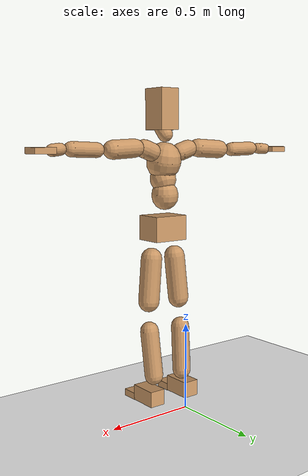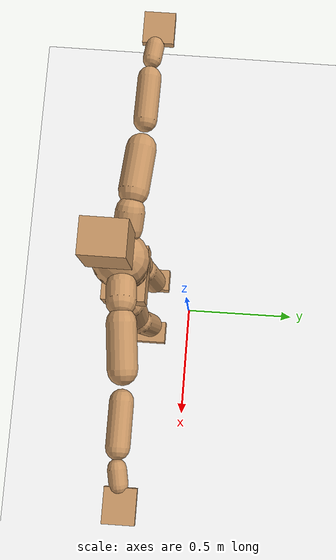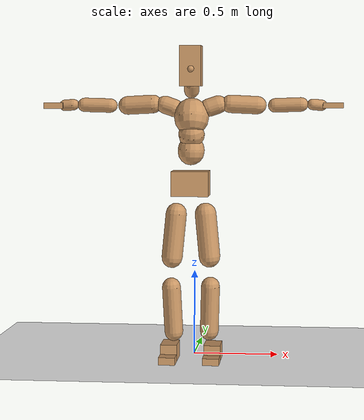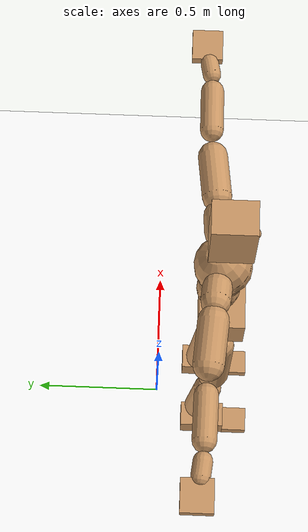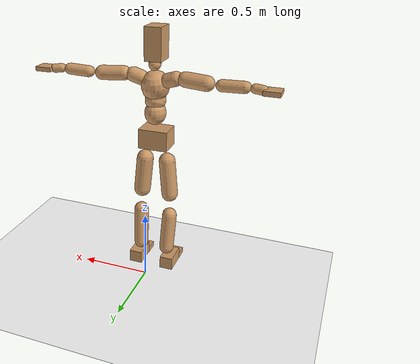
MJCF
<mujoco model="humanoid">
  <option integrator="implicitfast" />

  <visual>
    <global offwidth="1280" offheight="960" />
    <headlight active="1" ambient="0.34 0.34 0.34" diffuse="0.5 0.5 0.5" />
  </visual>

  <default>
    <joint damping="2" stiffness="2" armature="0.01" limited="true" solimplimit="0 .99 .01" />
    <geom condim="1" friction="0.7 0.005 0.0001" solimp=".99 .99 .003" solref="0.015 1" margin="0.001" rgba="0.8 0.6 .4 1" />
    <default class="smplcontact">
      <geom condim="3" friction="1. 0.005 0.0001" solref="0.015 1" solimp="0.98 0.98 0.001" priority="1" />
    </default>
    <default class="stiff_medium">
      <joint stiffness="10" />
    </default>
    <default class="stiff_medium_higher">
      <joint stiffness="50" />
    </default>
    <default class="stiff_high">
      <joint stiffness="100" />
    </default>
  </default>

  <asset>
    <texture type="skybox" builtin="gradient" rgb1="0.99 0.99 0.99" rgb2="0.608 0.828 0.892" width="100" />
    <texture builtin="flat" height="1278" mark="cross" markrgb="1 1 1" name="texgeom" random="0.01" rgb1="0.8 0.6 0.4" rgb2="0.8 0.6 0.4" type="cube" width="127" />
    <texture name="texplane" type="2d" builtin="checker" markrgb="1 1 1" rgb1="0.756 0.772 0.76" rgb2="0.6 0.6 0.6" width="100" height="100" />
    <material name="MatPlane" reflectance="0.5" texture="texplane" texrepeat="1 1" texuniform="true" />
    <material name="geom" texture="texgeom" texuniform="true" />
  </asset>

  <worldbody>
    <light name="tracking_light" pos="0 0 7" dir="0 0 -1" directional="true" cutoff="100" exponent="1" diffuse="1 1 1" specular="0.1 0.1 0.1" mode="trackcom" />
    <camera name="back" pos="0 3 2.4" xyaxes="-1 0 0 0 -1 2" mode="trackcom" />
    <camera name="side" pos="-3 0 2.4" xyaxes="0 -1 0 1 0 2" mode="trackcom" />
    <camera name="front_side" pos="-2.8 -2.8 0.8" xyaxes="0.5 -0.5 0 0.1 0.1 1" mode="trackcom" />
    <geom condim="3" name="floor" pos="0 0 0" rgba="1 1 1 1" size="100 100 .2" type="plane" material="MatPlane" />
    <body name="Pelvis" pos="-0.0018 -0.2233 1.05109" euler="90 0 0">
      <site name="Pelvis" size="0.01" />
      <freejoint name="Pelvis" />
      <geom type="box" pos="-0.0000 -0.0121 -0.0055" size="0.1069 0.0722 0.083" quat="1.0000 0.0000 0.0000 0.0000" density="3165.830099" name="Pelvis" />
      <body name="L_Hip" pos="0.0781875 -0.102825 -0.00765">
        <joint name="L_Hip_x" type="hinge" pos="0 0 0" axis="1 0 0" stiffness="12.187540568181818" range="-160.0 22.92" class="stiff_medium" damping="19.237168096912296" armature="0.013495335550763796"/>
        <joint name="L_Hip_y" type="hinge" pos="0 0 0" axis="0 1 0" stiffness="12.16392" range="-70.0 70.0" class="stiff_medium" damping="12.014228216103271" armature="0.011866378571103066"/>
        <joint name="L_Hip_z" type="hinge" pos="0 0 0" axis="0 0 1" stiffness="12.168955681818181" range="-28.65 90.0" class="stiff_medium" damping="12.816129654657342" armature="0.013497721876857558"/>
        <geom type="capsule" density="2040.816327" fromto="0.0077625 -0.084375 -0.0010125 0.030825 -0.337725 -0.00405" size="0.0615" name="L_Hip" />
        <body name="L_Knee" pos="0.0385875 -0.4221 -0.0050625">
          <joint name="L_Knee_x" type="hinge" pos="0 0 0" axis="1 0 0" range="-5.16 171.89" damping="10.072640561582283" armature="0.013188848617403121" stiffness="2.40397425"/>
          <joint name="L_Knee_y" type="hinge" pos="0 0 0" axis="0 1 0" range="-4.58 6.88" damping="9.492149495972512" armature="0.011596019506642564" stiffness="2.428120431818182"/>
          <joint name="L_Knee_z" type="hinge" pos="0 0 0" axis="0 0 1" range="-6.88 4.58" damping="10.071761708255641" armature="0.013200099383969112" stiffness="2.401506159090909"/>
          <geom type="capsule" density="1234.567901" fromto="-0.0030375 -0.08955 -0.0097875 -0.0122625 -0.3582 -0.039375" size="0.0541" name="L_Knee" />
          <body name="L_Ankle" pos="-0.0153 -0.44775 -0.0491625">
            <joint name="L_Ankle_x" type="hinge" pos="0 0 0" axis="1 0 0" range="-45.84 45.84" class="stiff_medium" damping="6.897532598032319" armature="0.011747130867095364" stiffness="11.250017954545456"/>
            <joint name="L_Ankle_y" type="hinge" pos="0 0 0" axis="0 1 0" range="-74.48 22.92" class="stiff_medium" damping="3.4392113682719305" armature="0.011682135831686716" stiffness="11.250011704545456"/>
            <joint name="L_Ankle_z" type="hinge" pos="0 0 0" axis="0 0 1" range="-4.58 4.58" class="stiff_medium" damping="6.751978545825355" armature="0.011256596119329845" stiffness="11.25"/>
            <geom type="box" pos="0.0262125 -0.0268875 0.027225" size="0.0483 0.0464 0.085" quat="1.0000 0.0000 0.0000 0.0000" density="449.071558" name="L_Ankle" class="smplcontact" />
            <body name="L_Toe" pos="0.0297 -0.062775 0.134213">
              <joint name="L_Toe_x" type="hinge" pos="0 0 0" axis="1 0 0" range="-91.67 22.92" armature="0.011009874139730069" damping="2.2258578936847093" stiffness="2.25"/>
              <joint name="L_Toe_y" type="hinge" pos="0 0 0" axis="0 1 0" range="-4.58 4.58" armature="0.010711537859158219" damping="2.195493574716446" stiffness="2.25"/>
              <joint name="L_Toe_z" type="hinge" pos="0 0 0" axis="0 0 1" range="-4.58 4.58" armature="0.01010831795771753" damping="2.132778254055702" stiffness="2.25"/>
              <geom type="box" pos="-0.003375 0.0061875 0.0279" size="0.0478 0.02 0.0496" quat="1.0000 0.0000 0.0000 0.0000" density="423.206892" name="L_Toe" class="smplcontact" />
            </body>
          </body>
        </body>
      </body>
      <body name="R_Hip" pos="-0.0761625 -0.101813 -0.0048375">
        <joint name="R_Hip_x" type="hinge" pos="0 0 0" axis="1 0 0" stiffness="12.187540568181818" range="-160.0 22.92" class="stiff_medium" damping="19.237168096912296" armature="0.013495335550763796"/>
        <joint name="R_Hip_y" type="hinge" pos="0 0 0" axis="0 1 0" stiffness="12.16392" range="-70.0 70.0" class="stiff_medium" damping="12.014228216103271" armature="0.011866378571103066"/>
        <joint name="R_Hip_z" type="hinge" pos="0 0 0" axis="0 0 1" stiffness="12.168955681818181" range="-90.0 28.65" class="stiff_medium" damping="12.816129654657342" armature="0.013497721876857558"/>
        <geom type="capsule" density="2040.816327" fromto="-0.0086625 -0.0860625 -0.002025 -0.034425 -0.344362 -0.0079875" size="0.0606" name="R_Hip" />
        <body name="R_Knee" pos="-0.0430875 -0.430425 -0.0100125">
          <joint name="R_Knee_x" type="hinge" pos="0 0 0" axis="1 0 0" range="-5.16 171.89" damping="10.072640561582283" armature="0.013188848617403121" stiffness="2.40397425"/>
          <joint name="R_Knee_y" type="hinge" pos="0 0 0" axis="0 1 0" range="-6.88 4.58" damping="9.492149495972512" armature="0.011596019506642564" stiffness="2.428120431818182"/>
          <joint name="R_Knee_z" type="hinge" pos="0 0 0" axis="0 0 1" range="-4.58 6.88" damping="10.071761708255641" armature="0.013200099383969112" stiffness="2.401506159090909"/>
          <geom type="capsule" density="1234.567901" fromto="0.0036 -0.0896625 -0.0095625 0.014175 -0.358537 -0.038025" size="0.0541" name="R_Knee" />
          <body name="R_Ankle" pos="0.017775 -0.4482 -0.0475875">
            <joint name="R_Ankle_x" type="hinge" pos="0 0 0" axis="1 0 0" range="-45.84 45.84" class="stiff_medium" damping="6.897532598032319" armature="0.011747130867095364" stiffness="11.250017954545456"/>
            <joint name="R_Ankle_y" type="hinge" pos="0 0 0" axis="0 1 0" range="-22.92 74.48" class="stiff_medium" damping="3.4392113682719305" armature="0.011682135831686716" stiffness="11.250011704545456"/>
            <joint name="R_Ankle_z" type="hinge" pos="0 0 0" axis="0 0 1" range="-4.58 4.58" class="stiff_medium" damping="6.751978545825355" armature="0.011256596119329845" stiffness="11.25"/>
            <geom type="box" pos="-0.02385 -0.019575 0.0288" size="0.0483 0.0478 0.0865" quat="1.0000 0.0000 0.0000 0.0000" density="434.700981" name="R_Ankle" class="smplcontact" />
            <body name="R_Toe" pos="-0.028575 -0.0541125 0.138713">
              <joint name="R_Toe_x" type="hinge" pos="0 0 0" axis="1 0 0" range="-91.67 22.92" armature="0.011009874139730069" damping="2.2258578936847093" stiffness="2.25"/>
              <joint name="R_Toe_y" type="hinge" pos="0 0 0" axis="0 1 0" range="-4.58 4.58" armature="0.010711537859158219" damping="2.195493574716446" stiffness="2.25"/>
              <joint name="R_Toe_z" type="hinge" pos="0 0 0" axis="0 0 1" range="-4.58 4.58" armature="0.01010831795771753" damping="2.132778254055702" stiffness="2.25"/>
              <geom type="box" pos="0.004725 0.0050625 0.0255375" size="0.0479 0.0216 0.0493" quat="1.0000 0.0000 0.0000 0.0000" density="407.384095" name="R_Toe" class="smplcontact" />
            </body>
          </body>
        </body>
      </body>
      <body name="Torso" pos="-0.0025 0.109 -0.0267">
        <joint name="Torso_x" type="hinge" pos="0 0 0" axis="1 0 0" range="-25.78 57.3" class="stiff_medium" damping="15.0" armature="0.01" stiffness="10.0"/>
        <joint name="Torso_y" type="hinge" pos="0 0 0" axis="0 1 0" range="-57.3 57.3" class="stiff_high" damping="20.0" armature="0.010000000000000002" stiffness="100.0"/>
        <joint name="Torso_z" type="hinge" pos="0 0 0" axis="0 0 1" range="-34.38 34.38" class="stiff_high" damping="19.999999999999996" armature="0.009999999999999998" stiffness="100.0"/>
        <geom type="capsule" density="2040.816327" fromto="0.0025 0.0608 0.0005 0.003 0.0743 0.0006" size="0.0769" name="Torso" />
        <body name="Spine" pos="0.0055 0.1352 0.0011">
          <joint name="Spine_x" type="hinge" pos="0 0 0" axis="1 0 0" stiffness="10.0" range="-25.78 57.3" class="stiff_medium" damping="15.000000000000004" armature="0.010000000000000005"/>
          <joint name="Spine_y" type="hinge" pos="0 0 0" axis="0 1 0" stiffness="10.0" range="-57.3 57.3" class="stiff_high" damping="8.0" armature="0.01"/>
          <joint name="Spine_z" type="hinge" pos="0 0 0" axis="0 0 1" stiffness="20.0" range="-34.38 34.38" class="stiff_high" damping="11.999999999999998" armature="0.009999999999999998"/>
          <geom type="capsule" density="2040.816327" fromto="0.0007 0.0238 0.0114 0.0008 0.0291 0.014" size="0.0755" name="Spine" />
          <body name="Chest" pos="0.0015 0.0529 0.0254">
            <joint name="Chest_x" type="hinge" pos="0 0 0" axis="1 0 0" stiffness="10.0" range="-25.78 57.3" class="stiff_medium" damping="15.0" armature="0.010000000000000002"/>
            <joint name="Chest_y" type="hinge" pos="0 0 0" axis="0 1 0" stiffness="10.0" range="-57.3 57.3" class="stiff_high" damping="8.0" armature="0.010000000000000002"/>
            <joint name="Chest_z" type="hinge" pos="0 0 0" axis="0 0 1" stiffness="20.0" range="-34.38 34.38" class="stiff_high" damping="12.0" armature="0.01"/>
            <geom type="capsule" density="2040.816327" fromto="-0.0009 0.0682 -0.0173 -0.001 0.0833 -0.0212" size="0.1002" name="Chest" />
            <body name="Neck" pos="-0.0028 0.2139 -0.0429">
              <joint name="Neck_x" type="hinge" pos="0 0 0" axis="1 0 0" range="-28.65 57.3" class="stiff_medium_higher" damping="10.0" armature="0.01" stiffness="50.0"/>
              <joint name="Neck_y" type="hinge" pos="0 0 0" axis="0 1 0" range="-40.11 40.11" class="stiff_medium_higher" damping="10.0" armature="0.01" stiffness="50.0"/>
              <joint name="Neck_z" type="hinge" pos="0 0 0" axis="0 0 1" range="-40.11 40.11" class="stiff_medium_higher" damping="9.999999999999998" armature="0.009999999999999998" stiffness="50.0"/>
              <geom type="capsule" density="1000" fromto="0.001 0.013 0.0103 0.0041 0.052 0.0411" size="0.0436" name="Neck" />
              <body name="Head" pos="0.0052 0.065 0.0513">
                <joint name="Head_x" type="hinge" pos="0 0 0" axis="1 0 0" range="-28.65 57.3" class="stiff_medium_higher" damping="2.0000000000000036" armature="0.010000000000000035" stiffness="50.0"/>
                <joint name="Head_y" type="hinge" pos="0 0 0" axis="0 1 0" range="-40.11 40.11" class="stiff_medium_higher" damping="2.0" armature="0.01" stiffness="50.0"/>
                <joint name="Head_z" type="hinge" pos="0 0 0" axis="0 0 1" range="-40.11 40.11" class="stiff_medium_higher" damping="1.999999999999998" armature="0.009999999999999981" stiffness="50.0"/>
                <geom type="box" pos="-0.0042 0.0876 -0.0116" size="0.0606 0.1154 0.076" quat="1.0000 0.0000 0.0000 0.0000" density="1018.069894" name="Head" />
                <geom type="capsule" name="nose" size="0.02 0.01" pos="0 0.07 0.05" quat="1 0 0 0" mass="0" contype="0" conaffinity="0" />
              </body>
            </body>
            <body name="L_Thorax" pos="0.0788 0.1217 -0.0341">
              <joint name="L_Thorax_x" type="hinge" pos="0 0 0" axis="1 0 0" range="-10.89 4.58" class="stiff_medium_higher" damping="20.00000000000005" armature="0.01000000000000005" stiffness="50.0"/>
              <joint name="L_Thorax_y" type="hinge" pos="0 0 0" axis="0 1 0" range="-28.65 17.19" class="stiff_medium_higher" damping="20.0" armature="0.01" stiffness="50.0"/>
              <joint name="L_Thorax_z" type="hinge" pos="0 0 0" axis="0 0 1" range="-31.51 40.11" class="stiff_medium_higher" damping="19.999999999999996" armature="0.009999999999999998" stiffness="50.0"/>
              <geom type="capsule" density="1000" fromto="0.0182 0.0061 -0.0018 0.0728 0.0244 -0.0071" size="0.0521" name="L_Thorax" />
              <body name="L_Shoulder" pos="0.091 0.0305 -0.0089">
                <joint name="L_Shoulder_x" type="hinge" pos="0 0 0" axis="1 0 0" range="-97.4 97.4" class="stiff_medium" damping="6.000000000000024" armature="0.01000000000000008" stiffness="10.0"/>
                <joint name="L_Shoulder_y" type="hinge" pos="0 0 0" axis="0 1 0" range="-108.86 80.21" class="stiff_medium" damping="5.999999999999998" armature="0.009999999999999995" stiffness="10.0"/>
                <joint name="L_Shoulder_z" type="hinge" pos="0 0 0" axis="0 0 1" range="-97.4 85.94" class="stiff_medium" damping="6.0" armature="0.01" stiffness="10.0"/>
                <geom type="capsule" density="1000" fromto="0.0519 -0.0026 -0.0055 0.2077 -0.0102 -0.022" size="0.0517" name="L_Shoulder" />
                <body name="L_Elbow" pos="0.2596 -0.0128 -0.0275">
                  <joint name="L_Elbow_x" type="hinge" pos="0 0 0" axis="1 0 0" range="-17.19 4.58" damping="5.000000000000043" armature="0.010000000000000172" stiffness="2.0"/>
                  <joint name="L_Elbow_y" type="hinge" pos="0 0 0" axis="0 1 0" range="-180.0 17.19" damping="5.000000000000002" armature="0.01000000000000001" stiffness="2.0"/>
                  <joint name="L_Elbow_z" type="hinge" pos="0 0 0" axis="0 0 1" range="-100.84 4.58" damping="5.000000000000001" armature="0.010000000000000005" stiffness="2.0"/>
                  <geom type="capsule" density="1000" fromto="0.0498 0.0018 -0.0002 0.1994 0.0072 -0.0009" size="0.0405" name="L_Elbow" />
                  <body name="L_Wrist" pos="0.2492 0.009 -0.0012">
                    <joint name="L_Wrist_x" type="hinge" pos="0 0 0" axis="1 0 0" range="-180.0 22.92" armature="0.009999999999999851" damping="1.9999999999999851" stiffness="2.0"/>
                    <joint name="L_Wrist_y" type="hinge" pos="0 0 0" axis="0 1 0" range="-17.19 17.19" armature="0.00999999999999992" damping="1.999999999999992" stiffness="2.0"/>
                    <joint name="L_Wrist_z" type="hinge" pos="0 0 0" axis="0 0 1" range="-22.92 22.92" armature="0.009999999999999933" damping="1.9999999999999931" stiffness="2.0"/>
                    <geom type="capsule" density="1000" fromto="0.0168 -0.0016 -0.003 0.0672 -0.0065 -0.012" size="0.0318" name="L_Wrist" class="smplcontact" />
                    <body name="L_Hand" pos="0.084 -0.0082 -0.0149">
                      <joint name="L_Hand_x" type="hinge" pos="0 0 0" axis="1 0 0" range="-17.19 17.19" armature="0.009999999999999678" damping="1.9999999999999678" stiffness="2.0"/>
                      <joint name="L_Hand_y" type="hinge" pos="0 0 0" axis="0 1 0" range="-51.57 51.57" armature="0.010000000000000026" damping="2.0000000000000027" stiffness="2.0"/>
                      <joint name="L_Hand_z" type="hinge" pos="0 0 0" axis="0 0 1" range="-91.67 91.67" armature="0.010000000000000023" damping="2.000000000000002" stiffness="2.0"/>
                      <geom type="box" pos="0.0493 0.001 -0.0058" size="0.0585 0.0158 0.0538" quat="1.0000 0.0000 0.0000 0.0000" density="400.552564" name="L_Hand" class="smplcontact" />
                    </body>
                  </body>
                </body>
              </body>
            </body>
            <body name="R_Thorax" pos="-0.0818 0.1188 -0.0386">
              <joint name="R_Thorax_x" type="hinge" pos="0 0 0" axis="1 0 0" range="-10.89 4.58" class="stiff_medium_higher" damping="20.00000000000005" armature="0.01000000000000005" stiffness="50.0"/>
              <joint name="R_Thorax_y" type="hinge" pos="0 0 0" axis="0 1 0" range="-17.19 28.65" class="stiff_medium_higher" damping="20.0" armature="0.01" stiffness="50.0"/>
              <joint name="R_Thorax_z" type="hinge" pos="0 0 0" axis="0 0 1" range="-40.11 31.51" class="stiff_medium_higher" damping="19.999999999999996" armature="0.009999999999999998" stiffness="50.0"/>
              <geom type="capsule" density="1000" fromto="-0.0192 0.0065 -0.0018 -0.0768 0.026 -0.0073" size="0.0511" name="R_Thorax" />
              <body name="R_Shoulder" pos="-0.096 0.0326 -0.0091">
                <joint name="R_Shoulder_x" type="hinge" pos="0 0 0" axis="1 0 0" range="-97.4 97.4" class="stiff_medium" damping="6.000000000000024" armature="0.01000000000000008" stiffness="10.0"/>
                <joint name="R_Shoulder_y" type="hinge" pos="0 0 0" axis="0 1 0" range="-80.21 108.86" class="stiff_medium" damping="5.999999999999998" armature="0.009999999999999995" stiffness="10.0"/>
                <joint name="R_Shoulder_z" type="hinge" pos="0 0 0" axis="0 0 1" range="-85.94 97.4" class="stiff_medium" damping="6.0" armature="0.01" stiffness="10.0"/>
                <geom type="capsule" density="1000" fromto="-0.0507 -0.0027 -0.0043 -0.203 -0.0107 -0.0171" size="0.0531" name="R_Shoulder" />
                <body name="R_Elbow" pos="-0.2537 -0.0133 -0.0214">
                  <joint name="R_Elbow_x" type="hinge" pos="0 0 0" axis="1 0 0" range="-17.19 4.58" damping="5.000000000000043" armature="0.010000000000000172" stiffness="2.0"/>
                  <joint name="R_Elbow_y" type="hinge" pos="0 0 0" axis="0 1 0" range="-17.19 180.0" damping="5.000000000000002" armature="0.01000000000000001" stiffness="2.0"/>
                  <joint name="R_Elbow_z" type="hinge" pos="0 0 0" axis="0 0 1" range="-4.58 100.84" damping="5.000000000000001" armature="0.010000000000000005" stiffness="2.0"/>
                  <geom type="capsule" density="1000" fromto="-0.0511 0.0016 -0.0011 -0.2042 0.0062 -0.0044" size="0.0408" name="R_Elbow" />
                  <body name="R_Wrist" pos="-0.2553 0.0078 -0.0056">
                    <joint name="R_Wrist_x" type="hinge" pos="0 0 0" axis="1 0 0" range="-180.0 22.92" armature="0.009999999999999851" damping="1.9999999999999851" stiffness="2.0"/>
                    <joint name="R_Wrist_y" type="hinge" pos="0 0 0" axis="0 1 0" range="-17.19 17.19" armature="0.00999999999999992" damping="1.999999999999992" stiffness="2.0"/>
                    <joint name="R_Wrist_z" type="hinge" pos="0 0 0" axis="0 0 1" range="-22.92 22.92" armature="0.009999999999999933" damping="1.9999999999999931" stiffness="2.0"/>
                    <geom type="capsule" density="1000" fromto="-0.0169 -0.0012 -0.0021 -0.0677 -0.0049 -0.0083" size="0.0326" name="R_Wrist" class="smplcontact" />
                    <body name="R_Hand" pos="-0.0846 -0.0061 -0.0103">
                      <joint name="R_Hand_x" type="hinge" pos="0 0 0" axis="1 0 0" range="-17.19 17.19" armature="0.009999999999999678" damping="1.9999999999999678" stiffness="2.0"/>
                      <joint name="R_Hand_y" type="hinge" pos="0 0 0" axis="0 1 0" range="-51.57 51.57" armature="0.010000000000000026" damping="2.0000000000000027" stiffness="2.0"/>
                      <joint name="R_Hand_z" type="hinge" pos="0 0 0" axis="0 0 1" range="-91.67 91.67" armature="0.010000000000000023" damping="2.000000000000002" stiffness="2.0"/>
                      <geom type="box" pos="-0.0462 -0.0009 -0.0079" size="0.0569 0.0164 0.0546" quat="1.0000 0.0000 0.0000 0.0000" density="403.679611" name="R_Hand" class="smplcontact" />
                    </body>
                  </body>
                </body>
              </body>
            </body>
          </body>
        </body>
      </body>
    </body>
  </worldbody>
  <actuator>
    <general name="L_Hip_x" joint="L_Hip_x" biastype="affine" gainprm="350.18468126444" biasprm="-262.4279253648012 -219.37573022727273 -2.564955746254973" ctrllimited="true" ctrlrange="-1 1" forcerange="-438.75146045454545 438.75146045454545" />
    <general name="L_Hip_y" joint="L_Hip_y" biastype="affine" gainprm="267.49857197597765" biasprm="0.0 -218.95056 -2.402845643220654" ctrllimited="true" ctrlrange="-1 1" forcerange="-437.90112 437.90112" />
    <general name="L_Hip_z" joint="L_Hip_z" biastype="affine" gainprm="226.7988922615581" biasprm="117.27022368517983 -219.04120227272725 -2.5632259309314684" ctrllimited="true" ctrlrange="-1 1" forcerange="-438.0824045454545 438.0824045454545" />
    <general name="L_Knee_x" joint="L_Knee_x" biastype="affine" gainprm="334.28402591048246" biasprm="314.7990716749773 -216.3576825 -2.5181601403955707" ctrllimited="true" ctrlrange="-1 1" forcerange="-432.715365 432.715365" />
    <general name="L_Knee_y" joint="L_Knee_y" biastype="affine" gainprm="21.854693614958606" biasprm="4.386195053612984 -218.53083886363638 -2.373037373993128" ctrllimited="true" ctrlrange="-1 1" forcerange="-437.06167772727275 437.06167772727275" />
    <general name="L_Knee_z" joint="L_Knee_z" biastype="affine" gainprm="21.615147516413582" biasprm="-4.338118611496618 -216.1355543181818 -2.5179404270639103" ctrllimited="true" ctrlrange="-1 1" forcerange="-432.2711086363636 432.2711086363636" />
    <general name="L_Ankle_x" joint="L_Ankle_x" biastype="affine" gainprm="81.00609585506251" biasprm="0.0 -101.25016159090909 -2.2991775326774397" ctrllimited="true" ctrlrange="-1 1" forcerange="-202.50032318181817 202.50032318181817" />
    <general name="L_Ankle_y" joint="L_Ankle_y" biastype="affine" gainprm="86.06009329145104" biasprm="-45.55706786557716 -101.2501053409091 -2.292807578847954" ctrllimited="true" ctrlrange="-1 1" forcerange="-202.5002106818182 202.5002106818182" />
    <general name="L_Ankle_z" joint="L_Ankle_z" biastype="affine" gainprm="8.093528073810704" biasprm="0.0 -101.25 -2.2506595152751183" ctrllimited="true" ctrlrange="-1 1" forcerange="-202.5 202.5" />
    <general name="L_Toe_x" joint="L_Toe_x" biastype="affine" gainprm="80.99889798934223" biasprm="-48.59651136021711 -81.0 -0.8903431574738838" ctrllimited="true" ctrlrange="-1 1" forcerange="-162.0 162.0" />
    <general name="L_Toe_y" joint="L_Toe_y" biastype="affine" gainprm="6.474822459048563" biasprm="0.0 -81.0 -0.8781974298865785" ctrllimited="true" ctrlrange="-1 1" forcerange="-162.0 162.0" />
    <general name="L_Toe_z" joint="L_Toe_z" biastype="affine" gainprm="6.474822459048563" biasprm="0.0 -81.0 -0.8531113016222808" ctrllimited="true" ctrlrange="-1 1" forcerange="-162.0 162.0" />
    <general name="R_Hip_x" joint="R_Hip_x" biastype="affine" gainprm="350.18468126444" biasprm="-262.4279253648012 -219.37573022727273 -2.564955746254973" ctrllimited="true" ctrlrange="-1 1" forcerange="-438.75146045454545 438.75146045454545" />
    <general name="R_Hip_y" joint="R_Hip_y" biastype="affine" gainprm="267.49857197597765" biasprm="0.0 -218.95056 -2.402845643220654" ctrllimited="true" ctrlrange="-1 1" forcerange="-437.90112 437.90112" />
    <general name="R_Hip_z" joint="R_Hip_z" biastype="affine" gainprm="226.7988922615581" biasprm="-117.27022368517983 -219.04120227272725 -2.5632259309314684" ctrllimited="true" ctrlrange="-1 1" forcerange="-438.0824045454545 438.0824045454545" />
    <general name="R_Knee_x" joint="R_Knee_x" biastype="affine" gainprm="334.28402591048246" biasprm="314.7990716749773 -216.3576825 -2.5181601403955707" ctrllimited="true" ctrlrange="-1 1" forcerange="-432.715365 432.715365" />
    <general name="R_Knee_y" joint="R_Knee_y" biastype="affine" gainprm="21.854693614958606" biasprm="-4.386195053612984 -218.53083886363638 -2.373037373993128" ctrllimited="true" ctrlrange="-1 1" forcerange="-437.06167772727275 437.06167772727275" />
    <general name="R_Knee_z" joint="R_Knee_z" biastype="affine" gainprm="21.615147516413582" biasprm="4.338118611496618 -216.1355543181818 -2.5179404270639103" ctrllimited="true" ctrlrange="-1 1" forcerange="-432.2711086363636 432.2711086363636" />
    <general name="R_Ankle_x" joint="R_Ankle_x" biastype="affine" gainprm="81.00609585506251" biasprm="0.0 -101.25016159090909 -2.2991775326774397" ctrllimited="true" ctrlrange="-1 1" forcerange="-202.50032318181817 202.50032318181817" />
    <general name="R_Ankle_y" joint="R_Ankle_y" biastype="affine" gainprm="86.06009329145104" biasprm="45.55706786557716 -101.2501053409091 -2.292807578847954" ctrllimited="true" ctrlrange="-1 1" forcerange="-202.5002106818182 202.5002106818182" />
    <general name="R_Ankle_z" joint="R_Ankle_z" biastype="affine" gainprm="8.093528073810704" biasprm="0.0 -101.25 -2.2506595152751183" ctrllimited="true" ctrlrange="-1 1" forcerange="-202.5 202.5" />
    <general name="R_Toe_x" joint="R_Toe_x" biastype="affine" gainprm="80.99889798934223" biasprm="-48.59651136021711 -81.0 -0.8903431574738838" ctrllimited="true" ctrlrange="-1 1" forcerange="-162.0 162.0" />
    <general name="R_Toe_y" joint="R_Toe_y" biastype="affine" gainprm="6.474822459048563" biasprm="0.0 -81.0 -0.8781974298865785" ctrllimited="true" ctrlrange="-1 1" forcerange="-162.0 162.0" />
    <general name="R_Toe_z" joint="R_Toe_z" biastype="affine" gainprm="6.474822459048563" biasprm="0.0 -81.0 -0.8531113016222808" ctrllimited="true" ctrlrange="-1 1" forcerange="-162.0 162.0" />
    <general name="Torso_x" joint="Torso_x" biastype="affine" gainprm="174.00234510682668" biasprm="66.0153336274335 -240.0 -4.0" ctrllimited="true" ctrlrange="-1 1" forcerange="-360.0 360.0" />
    <general name="Torso_y" joint="Torso_y" biastype="affine" gainprm="240.0176787342602" biasprm="0.0 -240.0 -4.0" ctrllimited="true" ctrlrange="-1 1" forcerange="-360.0 360.0" />
    <general name="Torso_z" joint="Torso_z" biastype="affine" gainprm="144.01060724055614" biasprm="0.0 -240.0 -3.9999999999999996" ctrllimited="true" ctrlrange="-1 1" forcerange="-360.0 360.0" />
    <general name="Spine_x" joint="Spine_x" biastype="affine" gainprm="174.00234510682668" biasprm="66.0153336274335 -240.0 -4.000000000000001" ctrllimited="true" ctrlrange="-1 1" forcerange="-360.0 360.0" />
    <general name="Spine_y" joint="Spine_y" biastype="affine" gainprm="240.0176787342602" biasprm="0.0 -240.0 -4.0" ctrllimited="true" ctrlrange="-1 1" forcerange="-360.0 360.0" />
    <general name="Spine_z" joint="Spine_z" biastype="affine" gainprm="144.01060724055614" biasprm="0.0 -240.0 -3.9999999999999996" ctrllimited="true" ctrlrange="-1 1" forcerange="-360.0 360.0" />
    <general name="Chest_x" joint="Chest_x" biastype="affine" gainprm="174.00234510682668" biasprm="66.0153336274335 -240.0 -4.0" ctrllimited="true" ctrlrange="-1 1" forcerange="-360.0 360.0" />
    <general name="Chest_y" joint="Chest_y" biastype="affine" gainprm="240.0176787342602" biasprm="0.0 -240.0 -4.0" ctrllimited="true" ctrlrange="-1 1" forcerange="-360.0 360.0" />
    <general name="Chest_z" joint="Chest_z" biastype="affine" gainprm="144.01060724055614" biasprm="0.0 -240.0 -4.0" ctrllimited="true" ctrlrange="-1 1" forcerange="-360.0 360.0" />
    <general name="Neck_x" joint="Neck_x" biastype="affine" gainprm="27.00198885760427" biasprm="9.000662952534757 -36.0 -0.8" ctrllimited="true" ctrlrange="-1 1" forcerange="-72.0 72.0" />
    <general name="Neck_y" joint="Neck_y" biastype="affine" gainprm="25.20185626709732" biasprm="0.0 -36.0 -0.8" ctrllimited="true" ctrlrange="-1 1" forcerange="-72.0 72.0" />
    <general name="Neck_z" joint="Neck_z" biastype="affine" gainprm="25.20185626709732" biasprm="0.0 -36.0 -0.7999999999999999" ctrllimited="true" ctrlrange="-1 1" forcerange="-72.0 72.0" />
    <general name="Head_x" joint="Head_x" biastype="affine" gainprm="18.001325905069514" biasprm="6.000441968356505 -24.0 -0.8000000000000015" ctrllimited="true" ctrlrange="-1 1" forcerange="-48.0 48.0" />
    <general name="Head_y" joint="Head_y" biastype="affine" gainprm="16.801237511398213" biasprm="0.0 -24.0 -0.8" ctrllimited="true" ctrlrange="-1 1" forcerange="-48.0 48.0" />
    <general name="Head_z" joint="Head_z" biastype="affine" gainprm="16.801237511398213" biasprm="0.0 -24.0 -0.7999999999999993" ctrllimited="true" ctrlrange="-1 1" forcerange="-48.0 48.0" />
    <general name="L_Thorax_x" joint="L_Thorax_x" biastype="affine" gainprm="16.200146117011364" biasprm="-6.6078165480505335 -120.0 -1.600000000000004" ctrllimited="true" ctrlrange="-1 1" forcerange="-240.0 240.0" />
    <general name="L_Thorax_y" joint="L_Thorax_y" biastype="affine" gainprm="48.00353574685204" biasprm="-12.00088393671301 -120.0 -1.6" ctrllimited="true" ctrlrange="-1 1" forcerange="-240.0 240.0" />
    <general name="L_Thorax_z" joint="L_Thorax_z" biastype="affine" gainprm="75.00028861670033" biasprm="9.00589894029074 -120.0 -1.5999999999999999" ctrllimited="true" ctrlrange="-1 1" forcerange="-240.0 240.0" />
    <general name="L_Shoulder_x" joint="L_Shoulder_x" biastype="affine" gainprm="81.5976331892389" biasprm="0.0 -48.0 -1.6000000000000065" ctrllimited="true" ctrlrange="-1 1" forcerange="-96.0 96.0" />
    <general name="L_Shoulder_y" joint="L_Shoulder_y" biastype="affine" gainprm="79.19745640189629" biasprm="-12.00088393671301 -48.0 -1.5999999999999996" ctrllimited="true" ctrlrange="-1 1" forcerange="-96.0 96.0" />
    <general name="L_Shoulder_z" joint="L_Shoulder_z" biastype="affine" gainprm="76.79727961455369" biasprm="-4.800353574685214 -48.0 -1.6" ctrllimited="true" ctrlrange="-1 1" forcerange="-96.0 96.0" />
    <general name="L_Elbow_x" joint="L_Elbow_x" biastype="affine" gainprm="13.67849441372996" biasprm="-7.923096672353461 -72.0 -0.8000000000000068" ctrllimited="true" ctrlrange="-1 1" forcerange="-144.0 144.0" />
    <general name="L_Elbow_y" joint="L_Elbow_y" biastype="affine" gainprm="123.89813107227425" biasprm="-102.29653998619085 -72.0 -0.8000000000000004" ctrllimited="true" ctrlrange="-1 1" forcerange="-144.0 144.0" />
    <general name="L_Elbow_z" joint="L_Elbow_z" biastype="affine" gainprm="66.23733950828719" biasprm="-60.4819417669107 -72.0 -0.8000000000000003" ctrllimited="true" ctrlrange="-1 1" forcerange="-144.0 144.0" />
    <general name="L_Wrist_x" joint="L_Wrist_x" biastype="affine" gainprm="21.24973270888136" biasprm="-16.449379134196157 -12.0 -0.799999999999994" ctrllimited="true" ctrlrange="-1 1" forcerange="-24.0 24.0" />
    <general name="L_Wrist_y" joint="L_Wrist_y" biastype="affine" gainprm="3.6002651810139037" biasprm="0.0 -12.0 -0.7999999999999968" ctrllimited="true" ctrlrange="-1 1" forcerange="-24.0 24.0" />
    <general name="L_Wrist_z" joint="L_Wrist_z" biastype="affine" gainprm="4.800353574685205" biasprm="0.0 -12.0 -0.7999999999999973" ctrllimited="true" ctrlrange="-1 1" forcerange="-24.0 24.0" />
    <general name="L_Hand_x" joint="L_Hand_x" biastype="affine" gainprm="3.6002651810139037" biasprm="0.0 -12.0 -0.7999999999999872" ctrllimited="true" ctrlrange="-1 1" forcerange="-24.0 24.0" />
    <general name="L_Hand_y" joint="L_Hand_y" biastype="affine" gainprm="10.800795543041708" biasprm="0.0 -12.0 -0.8000000000000012" ctrllimited="true" ctrlrange="-1 1" forcerange="-24.0 24.0" />
    <general name="L_Hand_z" joint="L_Hand_z" biastype="affine" gainprm="19.199319903638422" biasprm="0.0 -12.0 -0.8000000000000009" ctrllimited="true" ctrlrange="-1 1" forcerange="-24.0 24.0" />
    <general name="R_Thorax_x" joint="R_Thorax_x" biastype="affine" gainprm="16.200146117011364" biasprm="-6.6078165480505335 -120.0 -1.600000000000004" ctrllimited="true" ctrlrange="-1 1" forcerange="-240.0 240.0" />
    <general name="R_Thorax_y" joint="R_Thorax_y" biastype="affine" gainprm="48.00353574685204" biasprm="12.000883936713002 -120.0 -1.6" ctrllimited="true" ctrlrange="-1 1" forcerange="-240.0 240.0" />
    <general name="R_Thorax_z" joint="R_Thorax_z" biastype="affine" gainprm="75.00028861670033" biasprm="-9.00589894029074 -120.0 -1.5999999999999999" ctrllimited="true" ctrlrange="-1 1" forcerange="-240.0 240.0" />
    <general name="R_Shoulder_x" joint="R_Shoulder_x" biastype="affine" gainprm="81.5976331892389" biasprm="0.0 -48.0 -1.6000000000000065" ctrllimited="true" ctrlrange="-1 1" forcerange="-96.0 96.0" />
    <general name="R_Shoulder_y" joint="R_Shoulder_y" biastype="affine" gainprm="79.19745640189629" biasprm="12.00088393671301 -48.0 -1.5999999999999996" ctrllimited="true" ctrlrange="-1 1" forcerange="-96.0 96.0" />
    <general name="R_Shoulder_z" joint="R_Shoulder_z" biastype="affine" gainprm="76.79727961455369" biasprm="4.800353574685204 -48.0 -1.6" ctrllimited="true" ctrlrange="-1 1" forcerange="-96.0 96.0" />
    <general name="R_Elbow_x" joint="R_Elbow_x" biastype="affine" gainprm="13.67849441372996" biasprm="-7.923096672353461 -72.0 -0.8000000000000068" ctrllimited="true" ctrlrange="-1 1" forcerange="-144.0 144.0" />
    <general name="R_Elbow_y" joint="R_Elbow_y" biastype="affine" gainprm="123.89813107227425" biasprm="102.29653998619085 -72.0 -0.8000000000000004" ctrllimited="true" ctrlrange="-1 1" forcerange="-144.0 144.0" />
    <general name="R_Elbow_z" joint="R_Elbow_z" biastype="affine" gainprm="66.23733950828719" biasprm="60.481941766910694 -72.0 -0.8000000000000003" ctrllimited="true" ctrlrange="-1 1" forcerange="-144.0 144.0" />
    <general name="R_Wrist_x" joint="R_Wrist_x" biastype="affine" gainprm="21.24973270888136" biasprm="-16.449379134196157 -12.0 -0.799999999999994" ctrllimited="true" ctrlrange="-1 1" forcerange="-24.0 24.0" />
    <general name="R_Wrist_y" joint="R_Wrist_y" biastype="affine" gainprm="3.6002651810139037" biasprm="0.0 -12.0 -0.7999999999999968" ctrllimited="true" ctrlrange="-1 1" forcerange="-24.0 24.0" />
    <general name="R_Wrist_z" joint="R_Wrist_z" biastype="affine" gainprm="4.800353574685205" biasprm="0.0 -12.0 -0.7999999999999973" ctrllimited="true" ctrlrange="-1 1" forcerange="-24.0 24.0" />
    <general name="R_Hand_x" joint="R_Hand_x" biastype="affine" gainprm="3.6002651810139037" biasprm="0.0 -12.0 -0.7999999999999872" ctrllimited="true" ctrlrange="-1 1" forcerange="-24.0 24.0" />
    <general name="R_Hand_y" joint="R_Hand_y" biastype="affine" gainprm="10.800795543041708" biasprm="0.0 -12.0 -0.8000000000000012" ctrllimited="true" ctrlrange="-1 1" forcerange="-24.0 24.0" />
    <general name="R_Hand_z" joint="R_Hand_z" biastype="affine" gainprm="19.199319903638422" biasprm="0.0 -12.0 -0.8000000000000009" ctrllimited="true" ctrlrange="-1 1" forcerange="-24.0 24.0" />
  </actuator>
  <contact>
    <exclude body1="Torso" body2="Chest" />
    <exclude body1="Head" body2="Chest" />
    <exclude body1="R_Knee" body2="R_Toe" />
    <exclude body1="R_Knee" body2="L_Ankle" />
    <exclude body1="R_Knee" body2="L_Toe" />
    <exclude body1="L_Knee" body2="L_Toe" />
    <exclude body1="L_Knee" body2="R_Ankle" />
    <exclude body1="L_Knee" body2="R_Toe" />
    <exclude body1="L_Shoulder" body2="Chest" />
    <exclude body1="R_Shoulder" body2="Chest" />
  </contact>
  <sensor>
    <framelinvel name="sensor_Pelvis_framelinvel" objtype="xbody" objname="Pelvis" />
    <framelinvel name="sensor_L_Hip_framelinvel" objtype="xbody" objname="L_Hip" />
    <framelinvel name="sensor_L_Knee_framelinvel" objtype="xbody" objname="L_Knee" />
    <framelinvel name="sensor_L_Ankle_framelinvel" objtype="xbody" objname="L_Ankle" />
    <framelinvel name="sensor_L_Toe_framelinvel" objtype="xbody" objname="L_Toe" />
    <framelinvel name="sensor_R_Hip_framelinvel" objtype="xbody" objname="R_Hip" />
    <framelinvel name="sensor_R_Knee_framelinvel" objtype="xbody" objname="R_Knee" />
    <framelinvel name="sensor_R_Ankle_framelinvel" objtype="xbody" objname="R_Ankle" />
    <framelinvel name="sensor_R_Toe_framelinvel" objtype="xbody" objname="R_Toe" />
    <framelinvel name="sensor_Torso_framelinvel" objtype="xbody" objname="Torso" />
    <framelinvel name="sensor_Spine_framelinvel" objtype="xbody" objname="Spine" />
    <framelinvel name="sensor_Chest_framelinvel" objtype="xbody" objname="Chest" />
    <framelinvel name="sensor_Neck_framelinvel" objtype="xbody" objname="Neck" />
    <framelinvel name="sensor_Head_framelinvel" objtype="xbody" objname="Head" />
    <framelinvel name="sensor_L_Thorax_framelinvel" objtype="xbody" objname="L_Thorax" />
    <framelinvel name="sensor_L_Shoulder_framelinvel" objtype="xbody" objname="L_Shoulder" />
    <framelinvel name="sensor_L_Elbow_framelinvel" objtype="xbody" objname="L_Elbow" />
    <framelinvel name="sensor_L_Wrist_framelinvel" objtype="xbody" objname="L_Wrist" />
    <framelinvel name="sensor_L_Hand_framelinvel" objtype="xbody" objname="L_Hand" />
    <framelinvel name="sensor_R_Thorax_framelinvel" objtype="xbody" objname="R_Thorax" />
    <framelinvel name="sensor_R_Shoulder_framelinvel" objtype="xbody" objname="R_Shoulder" />
    <framelinvel name="sensor_R_Elbow_framelinvel" objtype="xbody" objname="R_Elbow" />
    <framelinvel name="sensor_R_Wrist_framelinvel" objtype="xbody" objname="R_Wrist" />
    <framelinvel name="sensor_R_Hand_framelinvel" objtype="xbody" objname="R_Hand" />
    <frameangvel name="sensor_Pelvis_frameangvel" objtype="xbody" objname="Pelvis" />
    <frameangvel name="sensor_L_Hip_frameangvel" objtype="xbody" objname="L_Hip" />
    <frameangvel name="sensor_L_Knee_frameangvel" objtype="xbody" objname="L_Knee" />
    <frameangvel name="sensor_L_Ankle_frameangvel" objtype="xbody" objname="L_Ankle" />
    <frameangvel name="sensor_L_Toe_frameangvel" objtype="xbody" objname="L_Toe" />
    <frameangvel name="sensor_R_Hip_frameangvel" objtype="xbody" objname="R_Hip" />
    <frameangvel name="sensor_R_Knee_frameangvel" objtype="xbody" objname="R_Knee" />
    <frameangvel name="sensor_R_Ankle_frameangvel" objtype="xbody" objname="R_Ankle" />
    <frameangvel name="sensor_R_Toe_frameangvel" objtype="xbody" objname="R_Toe" />
    <frameangvel name="sensor_Torso_frameangvel" objtype="xbody" objname="Torso" />
    <frameangvel name="sensor_Spine_frameangvel" objtype="xbody" objname="Spine" />
    <frameangvel name="sensor_Chest_frameangvel" objtype="xbody" objname="Chest" />
    <frameangvel name="sensor_Neck_frameangvel" objtype="xbody" objname="Neck" />
    <frameangvel name="sensor_Head_frameangvel" objtype="xbody" objname="Head" />
    <frameangvel name="sensor_L_Thorax_frameangvel" objtype="xbody" objname="L_Thorax" />
    <frameangvel name="sensor_L_Shoulder_frameangvel" objtype="xbody" objname="L_Shoulder" />
    <frameangvel name="sensor_L_Elbow_frameangvel" objtype="xbody" objname="L_Elbow" />
    <frameangvel name="sensor_L_Wrist_frameangvel" objtype="xbody" objname="L_Wrist" />
    <frameangvel name="sensor_L_Hand_frameangvel" objtype="xbody" objname="L_Hand" />
    <frameangvel name="sensor_R_Thorax_frameangvel" objtype="xbody" objname="R_Thorax" />
    <frameangvel name="sensor_R_Shoulder_frameangvel" objtype="xbody" objname="R_Shoulder" />
    <frameangvel name="sensor_R_Elbow_frameangvel" objtype="xbody" objname="R_Elbow" />
    <frameangvel name="sensor_R_Wrist_frameangvel" objtype="xbody" objname="R_Wrist" />
    <frameangvel name="sensor_R_Hand_frameangvel" objtype="xbody" objname="R_Hand" />
    <subtreelinvel name="Chest_subtreelinvel" body="Chest" />
    <gyro name="Pelvis_gyro" site="Pelvis" />
  </sensor>
</mujoco>
